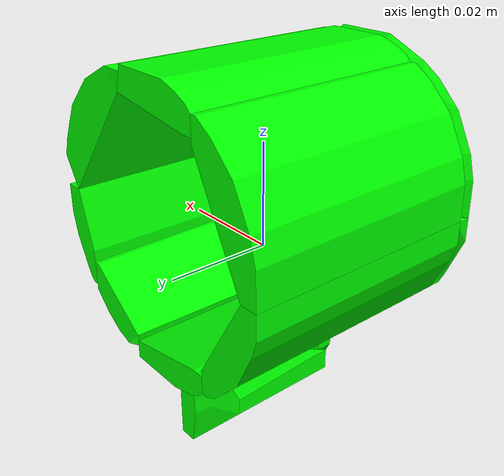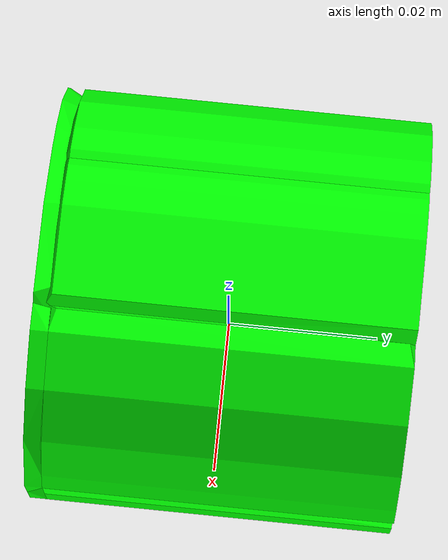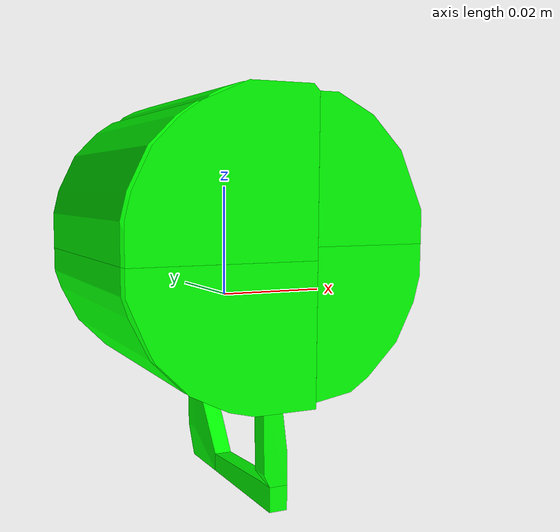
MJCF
<mujoco model="shapenet9-26">
  <asset>
    <mesh file="meshes/shapenet9-26/shapenet9-26_0.stl" name="shapenet9-26_0" scale="0.1 0.1 0.1"/>
    <mesh file="meshes/shapenet9-26/shapenet9-26_1.stl" name="shapenet9-26_1" scale="0.1 0.1 0.1"/>
    <mesh file="meshes/shapenet9-26/shapenet9-26_2.stl" name="shapenet9-26_2" scale="0.1 0.1 0.1"/>
    <mesh file="meshes/shapenet9-26/shapenet9-26_3.stl" name="shapenet9-26_3" scale="0.1 0.1 0.1"/>
    <mesh file="meshes/shapenet9-26/shapenet9-26_4.stl" name="shapenet9-26_4" scale="0.1 0.1 0.1"/>
    <mesh file="meshes/shapenet9-26/shapenet9-26_5.stl" name="shapenet9-26_5" scale="0.1 0.1 0.1"/>
    <mesh file="meshes/shapenet9-26/shapenet9-26_6.stl" name="shapenet9-26_6" scale="0.1 0.1 0.1"/>
    <mesh file="meshes/shapenet9-26/shapenet9-26_7.stl" name="shapenet9-26_7" scale="0.1 0.1 0.1"/>
    <mesh file="meshes/shapenet9-26/shapenet9-26_8.stl" name="shapenet9-26_8" scale="0.1 0.1 0.1"/>
    <mesh file="meshes/shapenet9-26/shapenet9-26_9.stl" name="shapenet9-26_9" scale="0.1 0.1 0.1"/>
    <mesh file="meshes/shapenet9-26/shapenet9-26_10.stl" name="shapenet9-26_10" scale="0.1 0.1 0.1"/>
    <mesh file="meshes/shapenet9-26/shapenet9-26_11.stl" name="shapenet9-26_11" scale="0.1 0.1 0.1"/>
    <mesh file="meshes/shapenet9-26/shapenet9-26_12.stl" name="shapenet9-26_12" scale="0.1 0.1 0.1"/>
    <mesh file="meshes/shapenet9-26/shapenet9-26_13.stl" name="shapenet9-26_13" scale="0.1 0.1 0.1"/>
  </asset>
  <worldbody>
    <body>
      <body name="collision">
        <geom pos="0 0 0" mesh="shapenet9-26_0" type="mesh" solimp="0.998 0.998 0.001" solref="0.001 1" density="100" friction="0.95 0.3 0.1" rgba="0 1 0 1" group="1" condim="4"/>
        <geom pos="0 0 0" mesh="shapenet9-26_1" type="mesh" solimp="0.998 0.998 0.001" solref="0.001 1" density="100" friction="0.95 0.3 0.1" rgba="0 1 0 1" group="1" condim="4"/>
        <geom pos="0 0 0" mesh="shapenet9-26_2" type="mesh" solimp="0.998 0.998 0.001" solref="0.001 1" density="100" friction="0.95 0.3 0.1" rgba="0 1 0 1" group="1" condim="4"/>
        <geom pos="0 0 0" mesh="shapenet9-26_3" type="mesh" solimp="0.998 0.998 0.001" solref="0.001 1" density="100" friction="0.95 0.3 0.1" rgba="0 1 0 1" group="1" condim="4"/>
        <geom pos="0 0 0" mesh="shapenet9-26_4" type="mesh" solimp="0.998 0.998 0.001" solref="0.001 1" density="100" friction="0.95 0.3 0.1" rgba="0 1 0 1" group="1" condim="4"/>
        <geom pos="0 0 0" mesh="shapenet9-26_5" type="mesh" solimp="0.998 0.998 0.001" solref="0.001 1" density="100" friction="0.95 0.3 0.1" rgba="0 1 0 1" group="1" condim="4"/>
        <geom pos="0 0 0" mesh="shapenet9-26_6" type="mesh" solimp="0.998 0.998 0.001" solref="0.001 1" density="100" friction="0.95 0.3 0.1" rgba="0 1 0 1" group="1" condim="4"/>
        <geom pos="0 0 0" mesh="shapenet9-26_7" type="mesh" solimp="0.998 0.998 0.001" solref="0.001 1" density="100" friction="0.95 0.3 0.1" rgba="0 1 0 1" group="1" condim="4"/>
        <geom pos="0 0 0" mesh="shapenet9-26_8" type="mesh" solimp="0.998 0.998 0.001" solref="0.001 1" density="100" friction="0.95 0.3 0.1" rgba="0 1 0 1" group="1" condim="4"/>
        <geom pos="0 0 0" mesh="shapenet9-26_9" type="mesh" solimp="0.998 0.998 0.001" solref="0.001 1" density="100" friction="0.95 0.3 0.1" rgba="0 1 0 1" group="1" condim="4"/>
        <geom pos="0 0 0" mesh="shapenet9-26_10" type="mesh" solimp="0.998 0.998 0.001" solref="0.001 1" density="100" friction="0.95 0.3 0.1" rgba="0 1 0 1" group="1" condim="4"/>
        <geom pos="0 0 0" mesh="shapenet9-26_11" type="mesh" solimp="0.998 0.998 0.001" solref="0.001 1" density="100" friction="0.95 0.3 0.1" rgba="0 1 0 1" group="1" condim="4"/>
        <geom pos="0 0 0" mesh="shapenet9-26_12" type="mesh" solimp="0.998 0.998 0.001" solref="0.001 1" density="100" friction="0.95 0.3 0.1" rgba="0 1 0 1" group="1" condim="4"/>
        <geom pos="0 0 0" mesh="shapenet9-26_13" type="mesh" solimp="0.998 0.998 0.001" solref="0.001 1" density="100" friction="0.95 0.3 0.1" rgba="0 1 0 1" group="1" condim="4"/>
      </body>
      <body name="visual">
        <geom pos="0 0 0" mesh="shapenet9-26_0" type="mesh" rgba="0 1 0 1" conaffinity="0" contype="0" group="0" mass="0.0001"/>
        <geom pos="0 0 0" mesh="shapenet9-26_1" type="mesh" rgba="0 1 0 1" conaffinity="0" contype="0" group="0" mass="0.0001"/>
        <geom pos="0 0 0" mesh="shapenet9-26_2" type="mesh" rgba="0 1 0 1" conaffinity="0" contype="0" group="0" mass="0.0001"/>
        <geom pos="0 0 0" mesh="shapenet9-26_3" type="mesh" rgba="0 1 0 1" conaffinity="0" contype="0" group="0" mass="0.0001"/>
        <geom pos="0 0 0" mesh="shapenet9-26_4" type="mesh" rgba="0 1 0 1" conaffinity="0" contype="0" group="0" mass="0.0001"/>
        <geom pos="0 0 0" mesh="shapenet9-26_5" type="mesh" rgba="0 1 0 1" conaffinity="0" contype="0" group="0" mass="0.0001"/>
        <geom pos="0 0 0" mesh="shapenet9-26_6" type="mesh" rgba="0 1 0 1" conaffinity="0" contype="0" group="0" mass="0.0001"/>
        <geom pos="0 0 0" mesh="shapenet9-26_7" type="mesh" rgba="0 1 0 1" conaffinity="0" contype="0" group="0" mass="0.0001"/>
        <geom pos="0 0 0" mesh="shapenet9-26_8" type="mesh" rgba="0 1 0 1" conaffinity="0" contype="0" group="0" mass="0.0001"/>
        <geom pos="0 0 0" mesh="shapenet9-26_9" type="mesh" rgba="0 1 0 1" conaffinity="0" contype="0" group="0" mass="0.0001"/>
        <geom pos="0 0 0" mesh="shapenet9-26_10" type="mesh" rgba="0 1 0 1" conaffinity="0" contype="0" group="0" mass="0.0001"/>
        <geom pos="0 0 0" mesh="shapenet9-26_11" type="mesh" rgba="0 1 0 1" conaffinity="0" contype="0" group="0" mass="0.0001"/>
        <geom pos="0 0 0" mesh="shapenet9-26_12" type="mesh" rgba="0 1 0 1" conaffinity="0" contype="0" group="0" mass="0.0001"/>
        <geom pos="0 0 0" mesh="shapenet9-26_13" type="mesh" rgba="0 1 0 1" conaffinity="0" contype="0" group="0" mass="0.0001"/>
      </body>
      <site rgba="0 0 0 0" size="0.005" pos="0 0 -0.06" name="bottom_site"/>
      <site rgba="0 0 0 0" size="0.005" pos="0 0 0.04" name="top_site"/>
      <site rgba="0 0 0 0" size="0.005" pos="0.025 0.025 0" name="horizontal_radius_site"/>
    </body>
  </worldbody>
</mujoco>
